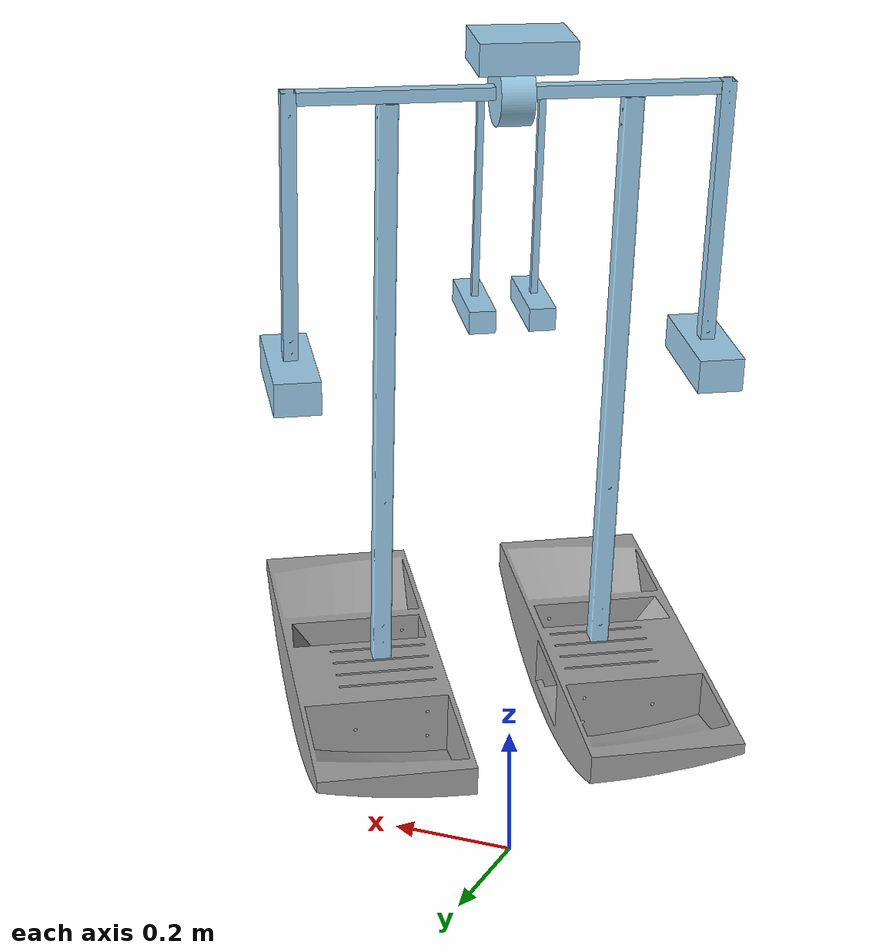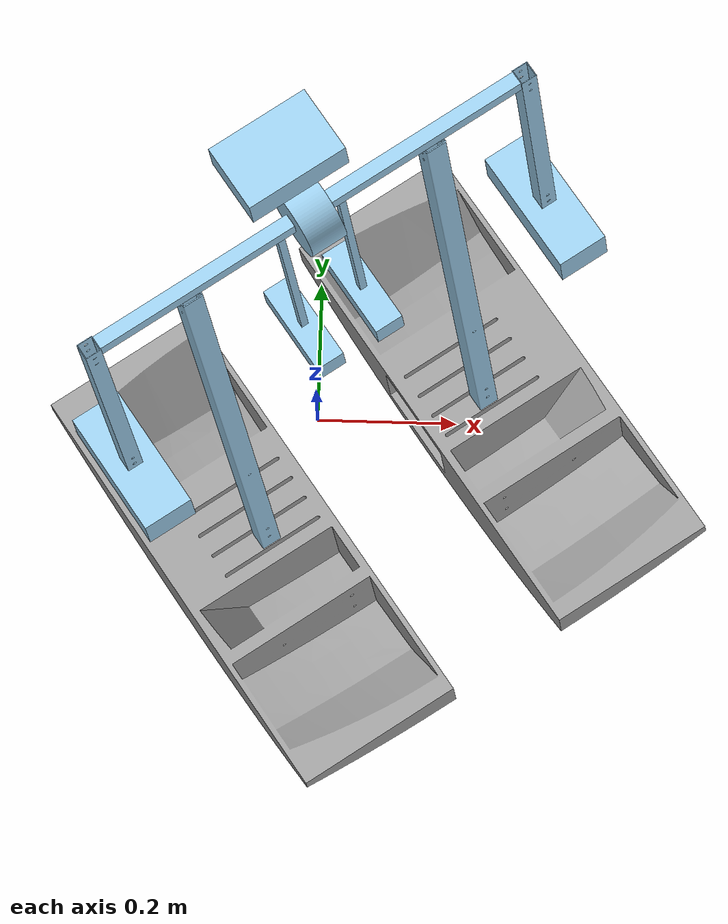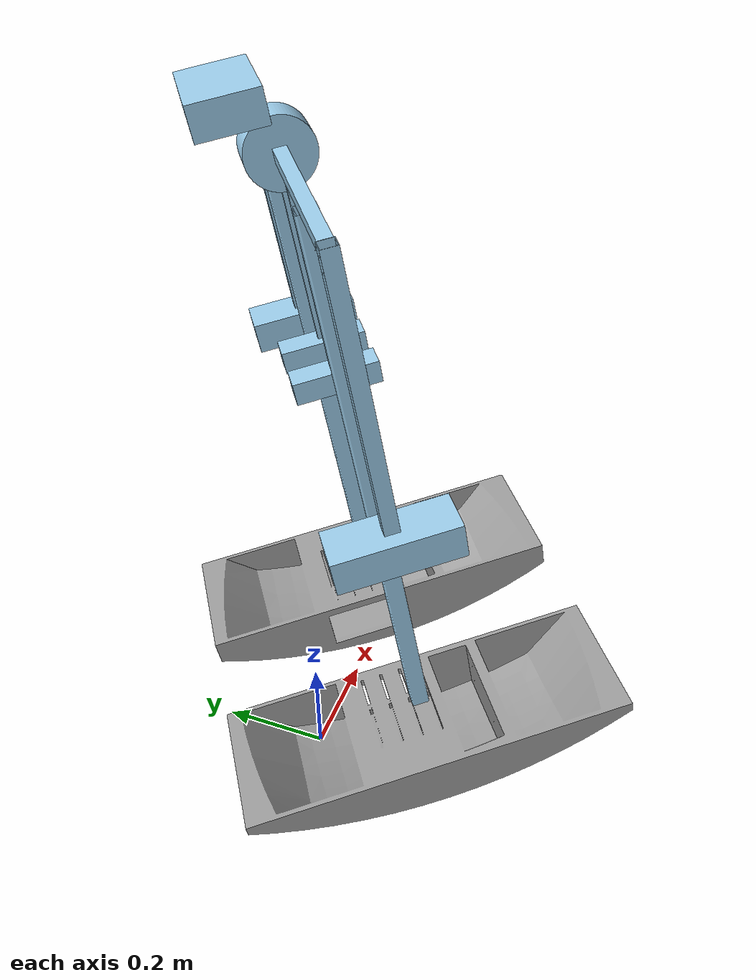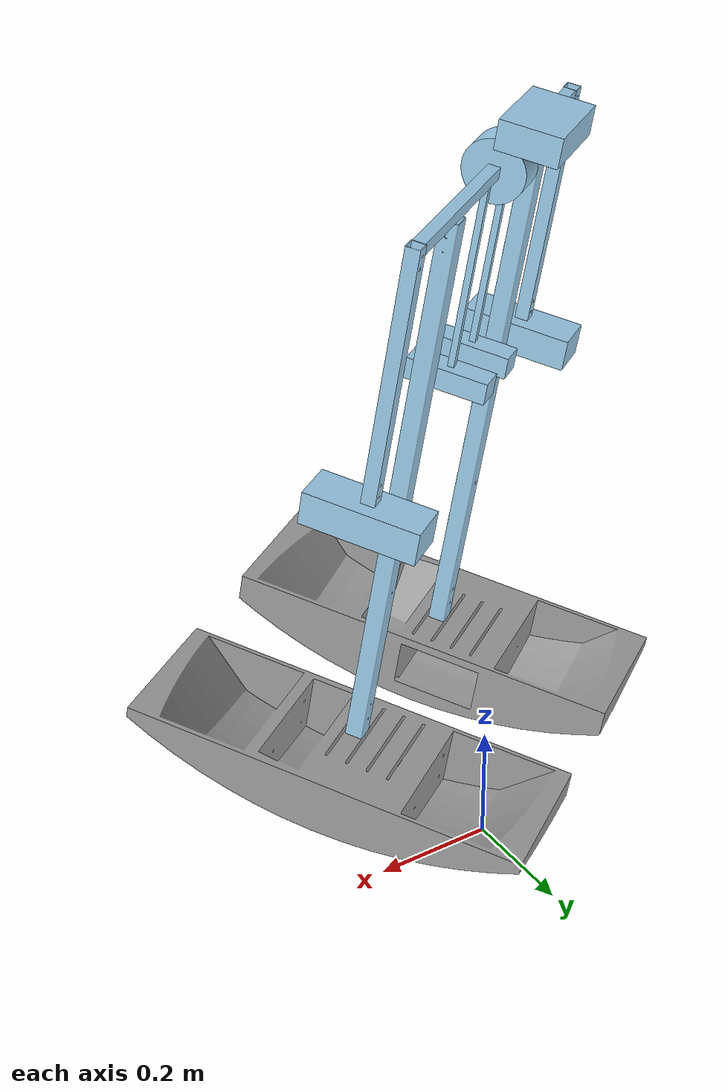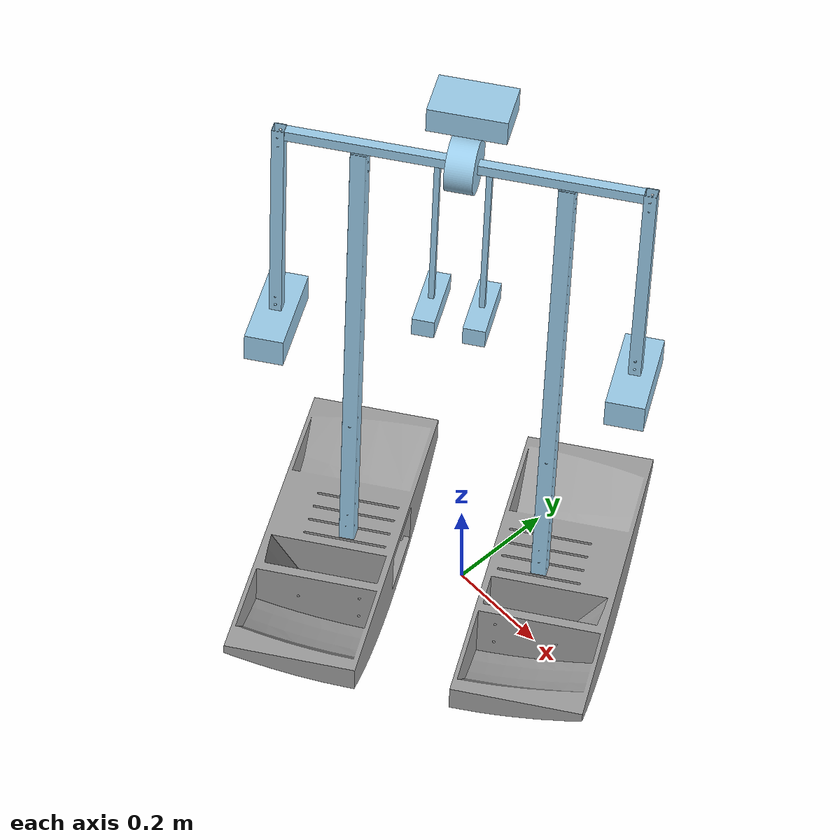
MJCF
<?xml version="1.0" ?>
<!-- Generated using onshape-to-robot -->
<!-- Onshape https://cad.onshape.com/documents/17c5c8d07f4ec308269aab5c/w/49bf5d1c311d43a28f235e29/e/5fc1d1e4321a0935153c1d8f -->
<mujoco model="Bigfoot">
  <compiler angle="radian" meshdir="assets" autolimits="true"/>
  <default>
    <default class="Bigfoot">
      <joint frictionloss="0.1" armature="0.005"/>
      <motor ctrllimited="true" ctrlrange="-25 25"/>
      <default class="visual">
        <geom type="mesh" contype="0" conaffinity="0" group="2"/>
      </default>
      <default class="collision">
        <geom group="3"/>
      </default>
    </default>
  </default>
  <worldbody>
    <!-- Link motor -->
    <body name="motor" pos="0 0 1.2" quat="0.95118426 -0.07896173 -0.02460767 0.29733485" childclass="Bigfoot">
      <freejoint name="motor_freejoint"/>
      <inertial pos="-0.00509362 0.00733735 -0.369416" mass="4.76" fullinertia="0.792619 0.947738 0.249136 0.000529723 -0.100394 -0.0127721"/>
      <!-- Part simplified_motor___arm_rod -->
      <geom type="mesh" class="visual" pos="-0.30932 -5.55112e-17 2.77556e-17" quat="0.5 0.5 0.5 0.5" mesh="simplified_motor___arm_rod" material="simplified_motor___arm_rod_material"/>
      <geom type="mesh" class="collision" pos="-0.30932 -5.55112e-17 2.77556e-17" quat="0.5 0.5 0.5 0.5" mesh="simplified_motor___arm_rod" material="simplified_motor___arm_rod_material"/>
      <!-- Part cf_rod___leg -->
      <geom type="mesh" class="visual" pos="-0.179383 4.16334e-17 -0.9239" quat="1 -6.42713e-17 1.11022e-16 2.08167e-17" mesh="cf_rod___leg" material="cf_rod___leg_material"/>
      <geom type="mesh" class="collision" pos="-0.179383 4.16334e-17 -0.9239" quat="1 -6.42713e-17 1.11022e-16 2.08167e-17" mesh="cf_rod___leg" material="cf_rod___leg_material"/>
      <!-- Part raspberry_pi___battery___motor_cover -->
      <geom type="mesh" class="visual" pos="-1.66533e-16 0.0535 0.0992" quat="0 1 0 0" mesh="raspberry_pi___battery___motor_cover" material="raspberry_pi___battery___motor_cover_material"/>
      <geom type="mesh" class="collision" pos="-1.66533e-16 0.0535 0.0992" quat="0 1 0 0" mesh="raspberry_pi___battery___motor_cover" material="raspberry_pi___battery___motor_cover_material"/>
      <!-- Part right_foot_1 -->
      <geom name="right_foot_1" type="mesh" class="visual" pos="-0.208871 0.0274398 -0.9239" quat="6.46484e-17 1 1.06661e-17 9.04496e-18" mesh="footstl_scaled_v4_mirrored" material="footstl_scaled_v4_mirrored_material"/>
      <geom name="right_foot_1_col" type="mesh" class="collision" pos="-0.208871 0.0274398 -0.9239" quat="6.46484e-17 1 1.06661e-17 9.04496e-18" mesh="footstl_scaled_v4_mirrored" material="footstl_scaled_v4_mirrored_material"/>
      <!-- Part arm_rod -->
      <geom type="mesh" class="visual" pos="0.320432 2.77556e-17 0.0095" quat="6.93889e-17 8.78706e-19 6.50521e-17 1" mesh="arm_rod" material="arm_rod_material"/>
      <geom type="mesh" class="collision" pos="0.320432 2.77556e-17 0.0095" quat="6.93889e-17 8.78706e-19 6.50521e-17 1" mesh="arm_rod" material="arm_rod_material"/>
      <!-- Part exo_hip_rod -->
      <geom type="mesh" class="visual" pos="-0.045 2.77556e-17 -0.3093" quat="1 -9.01669e-17 3.33067e-16 9.71445e-17" mesh="exo_hip_rod" material="exo_hip_rod_material"/>
      <geom type="mesh" class="collision" pos="-0.045 2.77556e-17 -0.3093" quat="1 -9.01669e-17 3.33067e-16 9.71445e-17" mesh="exo_hip_rod" material="exo_hip_rod_material"/>
      <!-- Part hip_inner_right -->
      <geom type="mesh" class="visual" pos="-0.045 1.38778e-17 -0.3443" quat="1 -6.49274e-17 -0 -1.04083e-16" mesh="hip_inner_right" material="hip_inner_right_material"/>
      <geom type="mesh" class="collision" pos="-0.045 1.38778e-17 -0.3443" quat="1 -6.49274e-17 -0 -1.04083e-16" mesh="hip_inner_right" material="hip_inner_right_material"/>
      <!-- Part motor -->
      <geom type="mesh" class="visual" pos="-0.025 0 2.77556e-17" quat="0.707107 0 0.707107 1.11022e-16" mesh="motor" material="motor_material"/>
      <geom type="mesh" class="collision" pos="-0.025 0 2.77556e-17" quat="0.707107 0 0.707107 1.11022e-16" mesh="motor" material="motor_material"/>
      <!-- Part battery_model -->
      <geom type="mesh" class="visual" pos="0.320432 5.55112e-17 -0.4495" quat="0.707107 -4.55707e-17 -5.0307e-17 -0.707107" mesh="battery_model" material="battery_model_material"/>
      <geom type="mesh" class="collision" pos="0.320432 5.55112e-17 -0.4495" quat="0.707107 -4.55707e-17 -5.0307e-17 -0.707107" mesh="battery_model" material="battery_model_material"/>
      <!-- Link simplified_motor___arm_rod -->
      <body name="simplified_motor___arm_rod" pos="0.025 4.26644e-18 6.83537e-18" quat="3.62575e-16 -0.707107 -4.44089e-16 0.707107">
        <!-- Joint from motor to simplified_motor___arm_rod -->
        <joint axis="0 0 1" name="hip" type="hinge"/>
        <inertial pos="0.527526 -0.000826262 0.0179106" mass="3.42" fullinertia="0.245594 0.640379 0.484084 0.00108537 0.0965605 -0.000687588"/>
        <!-- Part hip_inner_right_2 -->
        <geom type="mesh" class="visual" pos="0.3443 6.34483e-17 -0.02" quat="8.11852e-17 0.707107 0 -0.707107" mesh="hip_inner_right" material="hip_inner_right_material"/>
        <geom type="mesh" class="collision" pos="0.3443 6.34483e-17 -0.02" quat="8.11852e-17 0.707107 0 -0.707107" mesh="hip_inner_right" material="hip_inner_right_material"/>
        <!-- Part arm_rod_2 -->
        <geom type="mesh" class="visual" pos="-0.0095 -1.15648e-18 0.345432" quat="7.23671e-17 -0.707107 0 0.707107" mesh="arm_rod" material="arm_rod_material"/>
        <geom type="mesh" class="collision" pos="-0.0095 -1.15648e-18 0.345432" quat="7.23671e-17 -0.707107 0 0.707107" mesh="arm_rod" material="arm_rod_material"/>
        <!-- Part cf_rod___leg_2 -->
        <geom type="mesh" class="visual" pos="0.9239 2.03484e-16 -0.154383" quat="1.19221e-16 0.707107 1.11022e-16 -0.707107" mesh="cf_rod___leg" material="cf_rod___leg_material"/>
        <geom type="mesh" class="collision" pos="0.9239 2.03484e-16 -0.154383" quat="1.19221e-16 0.707107 1.11022e-16 -0.707107" mesh="cf_rod___leg" material="cf_rod___leg_material"/>
        <!-- Part simplified_motor___arm_rod_2 -->
        <geom type="mesh" class="visual" pos="5.94935e-19 5.78241e-19 -0.28432" quat="1 -0 -0 2.2693e-16" mesh="simplified_motor___arm_rod" material="simplified_motor___arm_rod_material"/>
        <geom type="mesh" class="collision" pos="5.94935e-19 5.78241e-19 -0.28432" quat="1 -0 -0 2.2693e-16" mesh="simplified_motor___arm_rod" material="simplified_motor___arm_rod_material"/>
        <!-- Part left_foot_1 -->
        <geom name="left_foot_1" type="mesh" class="visual" pos="0.9239 -0.0274398 -0.183871" quat="0.707107 7.13756e-17 -0.707107 2.22045e-16" mesh="footstl_scaled_v4" material="footstl_scaled_v4_material"/>
        <geom name="left_foot_1_col" type="mesh" class="collision" pos="0.9239 -0.0274398 -0.183871" quat="0.707107 7.13756e-17 -0.707107 2.22045e-16" mesh="footstl_scaled_v4" material="footstl_scaled_v4_material"/>
        <!-- Part battery_model_2 -->
        <geom type="mesh" class="visual" pos="0.4495 -8.02736e-17 0.345432" quat="0.5 0.5 -0.5 -0.5" mesh="battery_model" material="battery_model_material"/>
        <geom type="mesh" class="collision" pos="0.4495 -8.02736e-17 0.345432" quat="0.5 0.5 -0.5 -0.5" mesh="battery_model" material="battery_model_material"/>
        <!-- Part exo_hip_rod_2 -->
        <geom type="mesh" class="visual" pos="0.3093 5.53225e-17 -0.02" quat="6.05456e-17 0.707107 1.11022e-16 -0.707107" mesh="exo_hip_rod" material="exo_hip_rod_material"/>
        <geom type="mesh" class="collision" pos="0.3093 5.53225e-17 -0.02" quat="6.05456e-17 0.707107 1.11022e-16 -0.707107" mesh="exo_hip_rod" material="exo_hip_rod_material"/>
      </body>
    </body>
  </worldbody>
  <asset>
    <mesh file="footstl_scaled_v4_mirrored.stl"/>
    <mesh file="raspberry_pi___battery___motor_cover.stl"/>
    <mesh file="motor.stl"/>
    <mesh file="battery_model.stl"/>
    <mesh file="simplified_motor___arm_rod.stl"/>
    <mesh file="arm_rod.stl"/>
    <mesh file="footstl_scaled_v4.stl"/>
    <mesh file="hip_inner_right.stl"/>
    <mesh file="exo_hip_rod.stl"/>
    <mesh file="cf_rod___leg.stl"/>
    <material name="simplified_motor___arm_rod_material" rgba="0.615686 0.811765 0.929412 1"/>
    <material name="cf_rod___leg_material" rgba="0.615686 0.811765 0.929412 1"/>
    <material name="raspberry_pi___battery___motor_cover_material" rgba="0.615686 0.811765 0.929412 1"/>
    <material name="footstl_scaled_v4_mirrored_material" rgba="0.627451 0.627451 0.627451 1"/>
    <material name="arm_rod_material" rgba="0.615686 0.811765 0.929412 1"/>
    <material name="exo_hip_rod_material" rgba="0.615686 0.811765 0.929412 1"/>
    <material name="hip_inner_right_material" rgba="0.615686 0.811765 0.929412 1"/>
    <material name="motor_material" rgba="0.615686 0.811765 0.929412 1"/>
    <material name="battery_model_material" rgba="0.615686 0.811765 0.929412 1"/>
    <material name="footstl_scaled_v4_material" rgba="0.627451 0.627451 0.627451 1"/>
  </asset>
  <actuator>
    <motor class="Bigfoot" name="hip" joint="hip" ctrlrange="-25.0 25.0"/>
  </actuator>
  <equality/>
</mujoco>
